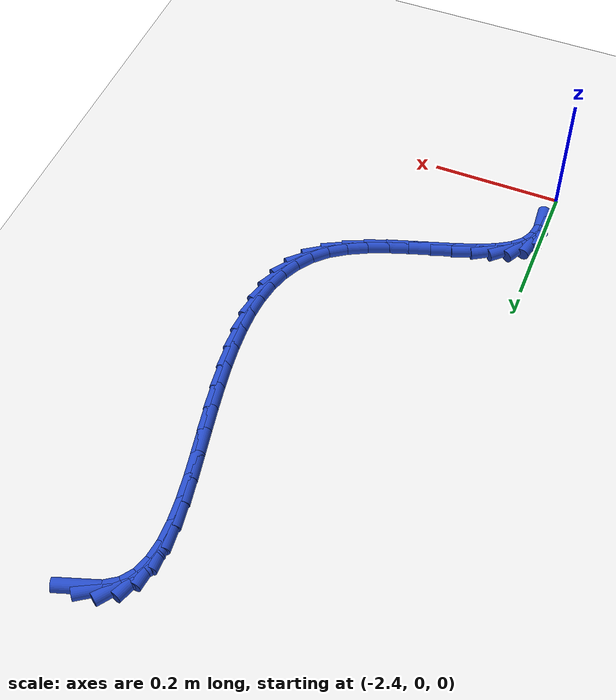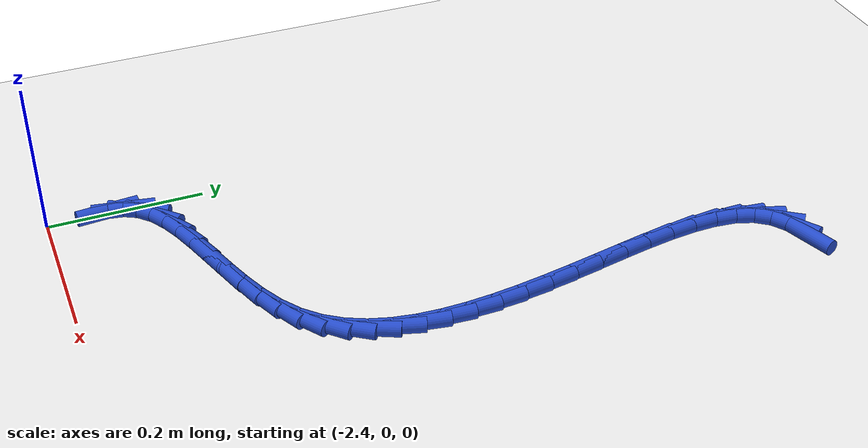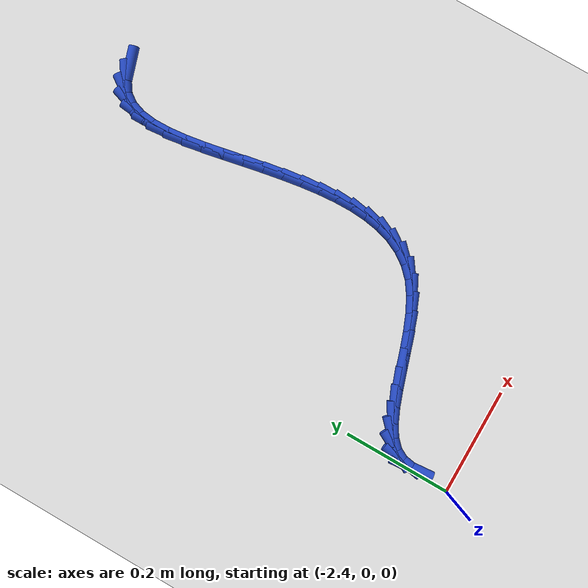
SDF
<sdf version="1.6">
 <world name="default">
  <model name="ground_plane">
   <static>1</static>
   <link name="link">
    <collision name="collision">
     <geometry><plane><normal>0 0 1</normal><size>100 100</size></plane></geometry>
     <surface><friction><ode><mu>100</mu><mu2>50</mu2></ode></friction></surface>
    </collision>
    <visual name="visual">
     <cast_shadows>0</cast_shadows>
     <geometry><plane><normal>0 0 1</normal><size>100 100</size></plane></geometry>
     <material>
      <script><uri>file://media/materials/scripts/gazebo.material</uri><name>Gazebo/WhiteGlow</name></script>
     </material>
    </visual>
   </link>
  </model>
  <model name="line">
   <link name="link_109">
    <pose>-2.0274928947393476 0.8725688376579243 0.01 0 1.57 0.321660987011944</pose>
    <collision name="collision">
     <geometry><cylinder><radius>0.01</radius><length>0.08</length></cylinder></geometry>
    </collision>
    <visual name="visual">
     <material>
      <script><name>Gazebo/Blue</name><uri>file://media/materials/scripts/gazebo.material</uri></script>
     </material>
     <geometry><cylinder><radius>0.01</radius><length>0.08</length></cylinder></geometry>
    </visual>
   </link>
   <link name="link_110">
    <pose>-2.052003202457944 0.8644011742613089 0.01 0 1.57 0.5960285591285385</pose>
    <collision name="collision">
     <geometry><cylinder><radius>0.01</radius><length>0.08</length></cylinder></geometry>
    </collision>
    <visual name="visual">
     <material>
      <script><name>Gazebo/Blue</name><uri>file://media/materials/scripts/gazebo.material</uri></script>
     </material>
     <geometry><cylinder><radius>0.01</radius><length>0.08</length></cylinder></geometry>
    </visual>
   </link>
   <link name="link_111">
    <pose>-2.0711841942067646 0.8513902792636551 0.01 0 1.57 0.9519106828361784</pose>
    <collision name="collision">
     <geometry><cylinder><radius>0.01</radius><length>0.08</length></cylinder></geometry>
    </collision>
    <visual name="visual">
     <material>
      <script><name>Gazebo/Blue</name><uri>file://media/materials/scripts/gazebo.material</uri></script>
     </material>
     <geometry><cylinder><radius>0.01</radius><length>0.08</length></cylinder></geometry>
    </visual>
   </link>
   <link name="link_112">
    <pose>-2.0843889280680883 0.832850242700339 0.01 0 1.57 1.251231445844323</pose>
    <collision name="collision">
     <geometry><cylinder><radius>0.01</radius><length>0.08</length></cylinder></geometry>
    </collision>
    <visual name="visual">
     <material>
      <script><name>Gazebo/Blue</name><uri>file://media/materials/scripts/gazebo.material</uri></script>
     </material>
     <geometry><cylinder><radius>0.01</radius><length>0.08</length></cylinder></geometry>
    </visual>
   </link>
   <link name="link_113">
    <pose>-2.092182198930652 0.8092989701211415 0.01 0 1.57 1.4562482808538395</pose>
    <collision name="collision">
     <geometry><cylinder><radius>0.01</radius><length>0.08</length></cylinder></geometry>
    </collision>
    <visual name="visual">
     <material>
      <script><name>Gazebo/Blue</name><uri>file://media/materials/scripts/gazebo.material</uri></script>
     </material>
     <geometry><cylinder><radius>0.01</radius><length>0.08</length></cylinder></geometry>
    </visual>
   </link>
   <link name="link_114">
    <pose>-2.095380059374429 0.781503982260604 0.01 0 1.57 -1.5522031576308435</pose>
    <collision name="collision">
     <geometry><cylinder><radius>0.01</radius><length>0.08</length></cylinder></geometry>
    </collision>
    <visual name="visual">
     <material>
      <script><name>Gazebo/Blue</name><uri>file://media/materials/scripts/gazebo.material</uri></script>
     </material>
     <geometry><cylinder><radius>0.01</radius><length>0.08</length></cylinder></geometry>
    </visual>
   </link>
   <link name="link_115">
    <pose>-2.0947985619793905 0.7502327998532666 0.01 0 1.57 -1.466851601074689</pose>
    <collision name="collision">
     <geometry><cylinder><radius>0.01</radius><length>0.08</length></cylinder></geometry>
    </collision>
    <visual name="visual">
     <material>
      <script><name>Gazebo/Blue</name><uri>file://media/materials/scripts/gazebo.material</uri></script>
     </material>
     <geometry><cylinder><radius>0.01</radius><length>0.08</length></cylinder></geometry>
    </visual>
   </link>
   <link name="link_116">
    <pose>-2.091253759325509 0.7162529436336702 0.01 0 1.57 -1.4136426530761608</pose>
    <collision name="collision">
     <geometry><cylinder><radius>0.01</radius><length>0.08</length></cylinder></geometry>
    </collision>
    <visual name="visual">
     <material>
      <script><name>Gazebo/Blue</name><uri>file://media/materials/scripts/gazebo.material</uri></script>
     </material>
     <geometry><cylinder><radius>0.01</radius><length>0.08</length></cylinder></geometry>
    </visual>
   </link>
   <link name="link_117">
    <pose>-2.085561703992757 0.680331934336355 0.01 0 1.57 -1.3836778120103237</pose>
    <collision name="collision">
     <geometry><cylinder><radius>0.01</radius><length>0.08</length></cylinder></geometry>
    </collision>
    <visual name="visual">
     <material>
      <script><name>Gazebo/Blue</name><uri>file://media/materials/scripts/gazebo.material</uri></script>
     </material>
     <geometry><cylinder><radius>0.01</radius><length>0.08</length></cylinder></geometry>
    </visual>
   </link>
   <link name="link_118">
    <pose>-2.0785384485611074 0.6432372926958626 0.01 0 1.57 -1.3724187539279222</pose>
    <collision name="collision">
     <geometry><cylinder><radius>0.01</radius><length>0.08</length></cylinder></geometry>
    </collision>
    <visual name="visual">
     <material>
      <script><name>Gazebo/Blue</name><uri>file://media/materials/scripts/gazebo.material</uri></script>
     </material>
     <geometry><cylinder><radius>0.01</radius><length>0.08</length></cylinder></geometry>
    </visual>
   </link>
   <link name="link_119">
    <pose>-2.070999972876071 0.6057364487978 0.01 0 1.57 -1.3764127812023461</pose>
    <collision name="collision">
     <geometry><cylinder><radius>0.01</radius><length>0.08</length></cylinder></geometry>
    </collision>
    <visual name="visual">
     <material>
      <script><name>Gazebo/Blue</name><uri>file://media/materials/scripts/gazebo.material</uri></script>
     </material>
     <geometry><cylinder><radius>0.01</radius><length>0.08</length></cylinder></geometry>
    </visual>
   </link>
   <link name="link_120">
    <pose>-2.063664280287041 0.5684747246563226 0.01 0 1.57 -1.3902481396564603</pose>
    <collision name="collision">
     <geometry><cylinder><radius>0.01</radius><length>0.08</length></cylinder></geometry>
    </collision>
    <visual name="visual">
     <material>
      <script><name>Gazebo/Blue</name><uri>file://media/materials/scripts/gazebo.material</uri></script>
     </material>
     <geometry><cylinder><radius>0.01</radius><length>0.08</length></cylinder></geometry>
    </visual>
   </link>
   <link name="link_121">
    <pose>-2.0569577843447444 0.5317340340256361 0.01 0 1.57 -1.413655802640704</pose>
    <collision name="collision">
     <geometry><cylinder><radius>0.01</radius><length>0.08</length></cylinder></geometry>
    </collision>
    <visual name="visual">
     <material>
      <script><name>Gazebo/Blue</name><uri>file://media/materials/scripts/gazebo.material</uri></script>
     </material>
     <geometry><cylinder><radius>0.01</radius><length>0.08</length></cylinder></geometry>
    </visual>
   </link>
   <link name="link_122">
    <pose>-2.051252898169166 0.495728989942758 0.01 0 1.57 -1.4478736430284713</pose>
    <collision name="collision">
     <geometry><cylinder><radius>0.01</radius><length>0.08</length></cylinder></geometry>
    </collision>
    <visual name="visual">
     <material>
      <script><name>Gazebo/Blue</name><uri>file://media/materials/scripts/gazebo.material</uri></script>
     </material>
     <geometry><cylinder><radius>0.01</radius><length>0.08</length></cylinder></geometry>
    </visual>
   </link>
   <link name="link_123">
    <pose>-2.046922034880286 0.4606742054447081 0.01 0 1.57 -1.4946841557105799</pose>
    <collision name="collision">
     <geometry><cylinder><radius>0.01</radius><length>0.08</length></cylinder></geometry>
    </collision>
    <visual name="visual">
     <material>
      <script><name>Gazebo/Blue</name><uri>file://media/materials/scripts/gazebo.material</uri></script>
     </material>
     <geometry><cylinder><radius>0.01</radius><length>0.08</length></cylinder></geometry>
    </visual>
   </link>
   <link name="link_124">
    <pose>-2.044337607598085 0.4267842935685037 0.01 0 1.57 -1.556476418215178</pose>
    <collision name="collision">
     <geometry><cylinder><radius>0.01</radius><length>0.08</length></cylinder></geometry>
    </collision>
    <visual name="visual">
     <material>
      <script><name>Gazebo/Blue</name><uri>file://media/materials/scripts/gazebo.material</uri></script>
     </material>
     <geometry><cylinder><radius>0.01</radius><length>0.08</length></cylinder></geometry>
    </visual>
   </link>
   <link name="link_125">
    <pose>-2.0438720294425448 0.3942738673511634 0.01 0 1.57 1.5053683507602322</pose>
    <collision name="collision">
     <geometry><cylinder><radius>0.01</radius><length>0.08</length></cylinder></geometry>
    </collision>
    <visual name="visual">
     <material>
      <script><name>Gazebo/Blue</name><uri>file://media/materials/scripts/gazebo.material</uri></script>
     </material>
     <geometry><cylinder><radius>0.01</radius><length>0.08</length></cylinder></geometry>
    </visual>
   </link>
   <link name="link_126">
    <pose>-2.045897713533647 0.36335753982970476 0.01 0 1.57 1.404374689983095</pose>
    <collision name="collision">
     <geometry><cylinder><radius>0.01</radius><length>0.08</length></cylinder></geometry>
    </collision>
    <visual name="visual">
     <material>
      <script><name>Gazebo/Blue</name><uri>file://media/materials/scripts/gazebo.material</uri></script>
     </material>
     <geometry><cylinder><radius>0.01</radius><length>0.08</length></cylinder></geometry>
    </visual>
   </link>
   <link name="link_127">
    <pose>-2.0507870729913726 0.33424992404114723 0.01 0 1.57 1.2793340909802149</pose>
    <collision name="collision">
     <geometry><cylinder><radius>0.01</radius><length>0.08</length></cylinder></geometry>
    </collision>
    <visual name="visual">
     <material>
      <script><name>Gazebo/Blue</name><uri>file://media/materials/scripts/gazebo.material</uri></script>
     </material>
     <geometry><cylinder><radius>0.01</radius><length>0.08</length></cylinder></geometry>
    </visual>
   </link>
   <link name="link_128">
    <pose>-2.0589125209357038 0.3071656330225086 0.01 0 1.57 1.129585602389327</pose>
    <collision name="collision">
     <geometry><cylinder><radius>0.01</radius><length>0.08</length></cylinder></geometry>
    </collision>
    <visual name="visual">
     <material>
      <script><name>Gazebo/Blue</name><uri>file://media/materials/scripts/gazebo.material</uri></script>
     </material>
     <geometry><cylinder><radius>0.01</radius><length>0.08</length></cylinder></geometry>
    </visual>
   </link>
   <link name="link_129">
    <pose>-2.070646470486621 0.2823192798108071 0.01 0 1.57 0.9588964282071821</pose>
    <collision name="collision">
     <geometry><cylinder><radius>0.01</radius><length>0.08</length></cylinder></geometry>
    </collision>
    <visual name="visual">
     <material>
      <script><name>Gazebo/Blue</name><uri>file://media/materials/scripts/gazebo.material</uri></script>
     </material>
     <geometry><cylinder><radius>0.01</radius><length>0.08</length></cylinder></geometry>
    </visual>
   </link>
   <link name="link_130">
    <pose>-2.0863613347641063 0.25992547744306105 0.01 0 1.57 0.7768155096839312</pose>
    <collision name="collision">
     <geometry><cylinder><radius>0.01</radius><length>0.08</length></cylinder></geometry>
    </collision>
    <visual name="visual">
     <material>
      <script><name>Gazebo/Blue</name><uri>file://media/materials/scripts/gazebo.material</uri></script>
     </material>
     <geometry><cylinder><radius>0.01</radius><length>0.08</length></cylinder></geometry>
    </visual>
   </link>
   <link name="link_131">
    <pose>-2.1064295268881423 0.2401988389562886 0.01 0 1.57 0.6015453640182448</pose>
    <collision name="collision">
     <geometry><cylinder><radius>0.01</radius><length>0.08</length></cylinder></geometry>
    </collision>
    <visual name="visual">
     <material>
      <script><name>Gazebo/Blue</name><uri>file://media/materials/scripts/gazebo.material</uri></script>
     </material>
     <geometry><cylinder><radius>0.01</radius><length>0.08</length></cylinder></geometry>
    </visual>
   </link>
   <link name="link_132">
    <pose>-2.1310763079698574 0.22328109439479144 0.01 0 1.57 0.4703805639795137</pose>
    <collision name="collision">
     <geometry><cylinder><radius>0.01</radius><length>0.08</length></cylinder></geometry>
    </collision>
    <visual name="visual">
     <material>
      <script><name>Gazebo/Blue</name><uri>file://media/materials/scripts/gazebo.material</uri></script>
     </material>
     <geometry><cylinder><radius>0.01</radius><length>0.08</length></cylinder></geometry>
    </visual>
   </link>
   <link name="link_133">
    <pose>-2.1595237879335274 0.2088171225453362 0.01 0 1.57 0.3847181898670748</pose>
    <collision name="collision">
     <geometry><cylinder><radius>0.01</radius><length>0.08</length></cylinder></geometry>
    </collision>
    <visual name="visual">
     <material>
      <script><name>Gazebo/Blue</name><uri>file://media/materials/scripts/gazebo.material</uri></script>
     </material>
     <geometry><cylinder><radius>0.01</radius><length>0.08</length></cylinder></geometry>
    </visual>
   </link>
   <link name="link_134">
    <pose>-2.1905754847077263 0.19624447755391727 0.01 0 1.57 0.33349133568021244</pose>
    <collision name="collision">
     <geometry><cylinder><radius>0.01</radius><length>0.08</length></cylinder></geometry>
    </collision>
    <visual name="visual">
     <material>
      <script><name>Gazebo/Blue</name><uri>file://media/materials/scripts/gazebo.material</uri></script>
     </material>
     <geometry><cylinder><radius>0.01</radius><length>0.08</length></cylinder></geometry>
    </visual>
   </link>
   <link name="link_135">
    <pose>-2.223033522346542 0.18500002319372919 0.01 0 1.57 0.3104280749601849</pose>
    <collision name="collision">
     <geometry><cylinder><radius>0.01</radius><length>0.08</length></cylinder></geometry>
    </collision>
    <visual name="visual">
     <material>
      <script><name>Gazebo/Blue</name><uri>file://media/materials/scripts/gazebo.material</uri></script>
     </material>
     <geometry><cylinder><radius>0.01</radius><length>0.08</length></cylinder></geometry>
    </visual>
   </link>
   <link name="link_136">
    <pose>-2.2557000249040584 0.17452062323796716 0.01 0 1.57 0.31373006195733233</pose>
    <collision name="collision">
     <geometry><cylinder><radius>0.01</radius><length>0.08</length></cylinder></geometry>
    </collision>
    <visual name="visual">
     <material>
      <script><name>Gazebo/Blue</name><uri>file://media/materials/scripts/gazebo.material</uri></script>
     </material>
     <geometry><cylinder><radius>0.01</radius><length>0.08</length></cylinder></geometry>
    </visual>
   </link>
   <link name="link_137">
    <pose>-2.2873771164343624 0.16424314145982577 0.01 0 1.57 0.3462269599422315</pose>
    <collision name="collision">
     <geometry><cylinder><radius>0.01</radius><length>0.08</length></cylinder></geometry>
    </collision>
    <visual name="visual">
     <material>
      <script><name>Gazebo/Blue</name><uri>file://media/materials/scripts/gazebo.material</uri></script>
     </material>
     <geometry><cylinder><radius>0.01</radius><length>0.08</length></cylinder></geometry>
    </visual>
   </link>
   <link name="link_138">
    <pose>-2.3168669209915405 0.15360444163249984 0.01 0 1.57 0.41697579848923105</pose>
    <collision name="collision">
     <geometry><cylinder><radius>0.01</radius><length>0.08</length></cylinder></geometry>
    </collision>
    <visual name="visual">
     <material>
      <script><name>Gazebo/Blue</name><uri>file://media/materials/scripts/gazebo.material</uri></script>
     </material>
     <geometry><cylinder><radius>0.01</radius><length>0.08</length></cylinder></geometry>
    </visual>
   </link>
   <link name="link_139">
    <pose>-2.342971562629677 0.14204138752918405 0.01 0 1.57 0.5451068219138427</pose>
    <collision name="collision">
     <geometry><cylinder><radius>0.01</radius><length>0.08</length></cylinder></geometry>
    </collision>
    <visual name="visual">
     <material>
      <script><name>Gazebo/Blue</name><uri>file://media/materials/scripts/gazebo.material</uri></script>
     </material>
     <geometry><cylinder><radius>0.01</radius><length>0.08</length></cylinder></geometry>
    </visual>
   </link>
   <link name="link_140">
    <pose>-2.364493165402859 0.12899084292307306 0.01 0 1.57 0.7644128507737682</pose>
    <collision name="collision">
     <geometry><cylinder><radius>0.01</radius><length>0.08</length></cylinder></geometry>
    </collision>
    <visual name="visual">
     <material>
      <script><name>Gazebo/Blue</name><uri>file://media/materials/scripts/gazebo.material</uri></script>
     </material>
     <geometry><cylinder><radius>0.01</radius><length>0.08</length></cylinder></geometry>
    </visual>
   </link>
   <link name="link_141">
    <pose>-2.3802394224920356 0.11389197545170791 0.01 0 1.57 1.078912827182507</pose>
    <collision name="collision">
     <geometry><cylinder><radius>0.01</radius><length>0.08</length></cylinder></geometry>
    </collision>
    <visual name="visual">
     <material>
      <script><name>Gazebo/Blue</name><uri>file://media/materials/scripts/gazebo.material</uri></script>
     </material>
     <geometry><cylinder><radius>0.01</radius><length>0.08</length></cylinder></geometry>
    </visual>
   </link>
   <link name="link_142">
    <pose>-2.389598820472189 0.09642421827822069 0.01 0 1.57 1.397901112677629</pose>
    <collision name="collision">
     <geometry><cylinder><radius>0.01</radius><length>0.08</length></cylinder></geometry>
    </collision>
    <visual name="visual">
     <material>
      <script><name>Gazebo/Blue</name><uri>file://media/materials/scripts/gazebo.material</uri></script>
     </material>
     <geometry><cylinder><radius>0.01</radius><length>0.08</length></cylinder></geometry>
    </visual>
   </link>
   <link name="link_143">
    <pose>-2.393040948100289 0.07671424034121871 0.01 0 1.57 -1.4843308067120033</pose>
    <collision name="collision">
     <geometry><cylinder><radius>0.01</radius><length>0.08</length></cylinder></geometry>
    </collision>
    <visual name="visual">
     <material>
      <script><name>Gazebo/Blue</name><uri>file://media/materials/scripts/gazebo.material</uri></script>
     </material>
     <geometry><cylinder><radius>0.01</radius><length>0.08</length></cylinder></geometry>
    </visual>
   </link>
  </model>
 </world>
</sdf>
